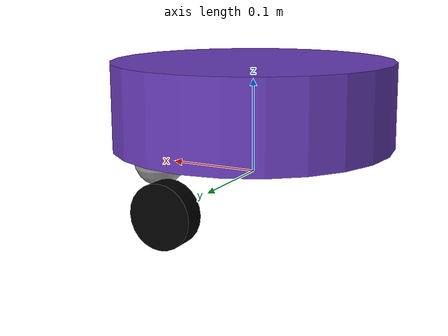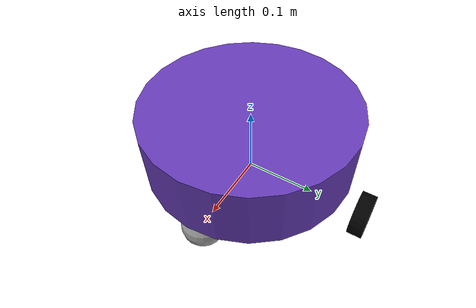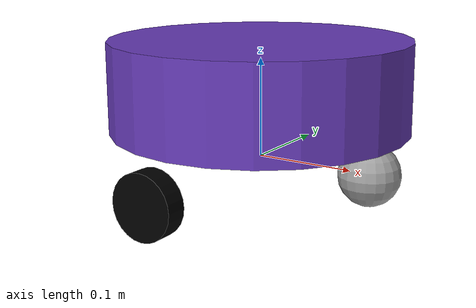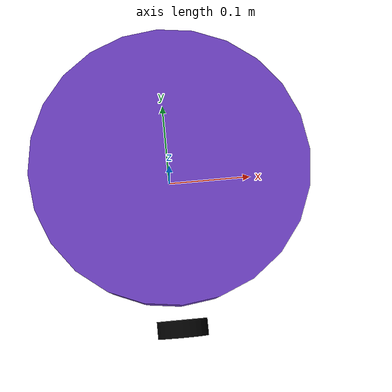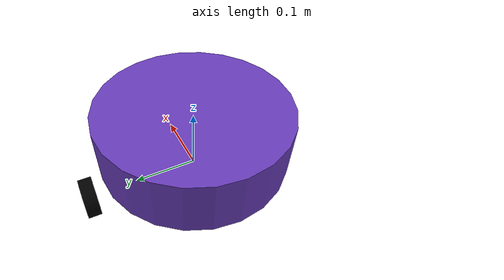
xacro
<?xml version="1.0"?>
<robot xmlns:xacro="http://www.ros.org/wiki/xacro" >

      <xacro:include filename="inertial_macros.xacro" />

      <!-- Base footprint -->

      <link name="base_footprint"></link>

      <joint name="base_footprint_joint" type="fixed">
        <origin xyz="0 0 0" rpy="0 0 0"/>
        <parent link="base_footprint"/>
        <child link="base_link"/>
      </joint>

      <!-- Base link -->

      <link name="base_link">
         <pose>0 0 0.1 0 0 0</pose>

      </link>

      <!-- Chassis link -->

      <joint name="chassis_joint" type="fixed">
        <parent link="base_link"/>
        <child link="chassis"/>
        <origin xyz="0 0 0"/>
      </joint>

      <link name="chassis">
         <visual>
            <origin xyz="0 0 0.075"/>
            <geometry>
               <cylinder radius="0.15" length="0.09"/>
            </geometry>
            <material name="chassis_material">
               <color rgba="0.40 0.23 0.72 1.0"/>
            </material>
         </visual>
         <collision>
            <origin xyz="0 0 0.075"/>
            <geometry>
               <cylinder radius="0.15" length="0.09"/>
            </geometry>
         </collision>
         <xacro:inertial_cylinder mass="0.5" length="0.09" radius="0.15">
            <origin xyz="0 0 0.075" rpy="0 0 0"/>
         </xacro:inertial_cylinder>
      </link>

      <!-- Left wheel link -->
      <joint name="left_wheel_joint" type="continuous">
        <parent link="base_link"/>
        <child link="left_wheel"/>
        <origin xyz="0 0.175 0" rpy="-${pi/2} 0 0"/>
        <axis xyz="0 0 1"/>
      </joint>

      <link name="left_wheel">
         <visual>
            <geometry>
               <cylinder radius="0.03" length="0.02"/>
            </geometry>
            <material name="wheel_material">
               <color rgba="0.0 0.0 0.0 1.0"/>
            </material>
         </visual>
         <collision>
            <geometry>
               <cylinder radius="0.03" length="0.02"/>
            </geometry>
         </collision>
         <xacro:inertial_cylinder mass="0.1" length="0.02" radius="0.03">
            <origin xyz="0 0 0" rpy="0 0 0"/>
         </xacro:inertial_cylinder>
      </link>

      <!-- Right wheel link -->
      <joint name="right_wheel_joint" type="continuous">
        <parent link="base_link"/>
        <child link="right_wheel"/>
        <origin xyz="0 -0.175 0" rpy="${pi/2} 0 0"/>
        <axis xyz="0 0 -1"/>
      </joint>

      <link name="right_wheel">
         <visual>
            <geometry>
               <cylinder radius="0.03" length="0.02"/>
            </geometry>
            <material name="wheel_material">
                <color rgba="0.0 0.0 0.0 1.0"/>
            </material>
         </visual>
         <collision>
            <geometry>
               <cylinder radius="0.03" length="0.02"/>
            </geometry>
         </collision>
            <xacro:inertial_cylinder mass="0.1" length="0.02" radius="0.03">
            <origin xyz="0 0 0" rpy="0 0 0"/>
         </xacro:inertial_cylinder>
      </link>

      <!-- Castor wheel link -->
      <joint name="castor_wheel_joint" type="fixed">
        <parent link="chassis"/>
        <child link="castor_wheel"/>
        <origin xyz="0.12 0 0"/>
      </joint>

      <link name="castor_wheel">
         <visual>
            <geometry>
               <sphere radius="0.03"/>
            </geometry>
            <material name="castor_material">
                <color rgba="0.62 0.62 0.62 1.0"/>
            </material>
         </visual>
         <collision>
            <geometry>
               <sphere radius="0.03"/>
            </geometry>
         </collision>
         <xacro:inertial_sphere mass="0.1" radius="0.03">
            <origin xyz="0 0 0" rpy="0 0 0"/>
         </xacro:inertial_sphere>
      </link>

      <!-- IMU -->
      <joint name="imu_joint" type="fixed">
        <parent link="base_link"/>
        <child link="imu_link"/>
        <origin xyz="0 0 0" rpy="0 0 0"/>
      </joint>

      <link name="imu_link">
      </link>

      <gazebo reference="imu_link">
        <sensor name="imu" type="imu">
            <always_on>1</always_on>
            <visualize>true</visualize>
            <update_rate>20</update_rate>
            <topic>imu</topic>
            <enable_metrics>true</enable_metrics>
            <gz_frame_id>imu_link</gz_frame_id>
        </sensor>
      </gazebo>

      <!-- Gazebo Parameters -->
      <gazebo reference="chassis_link">
         <mu1>1.0</mu1>
         <mu2>1.0</mu2>
      </gazebo>

      <gazebo reference="right_wheel">
         <mu1>1.0</mu1>
         <mu2>1.0</mu2>
      </gazebo>

      <gazebo reference="left_wheel">
         <mu1>1.0</mu1>
         <mu2>1.0</mu2>
      </gazebo>

      <gazebo reference="castor_wheel">
         <mu1>0.000001</mu1>
         <mu2>0.000001</mu2>
      </gazebo>

</robot>
